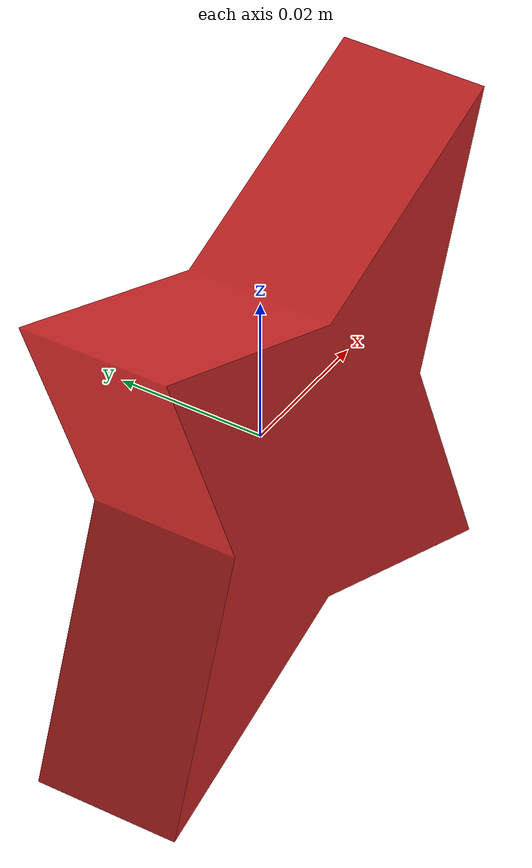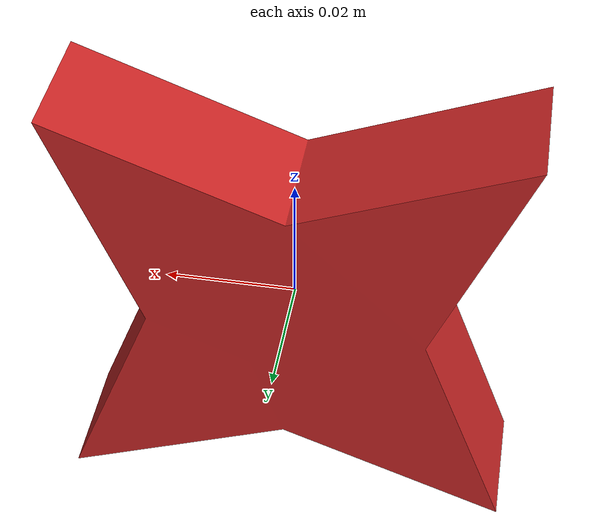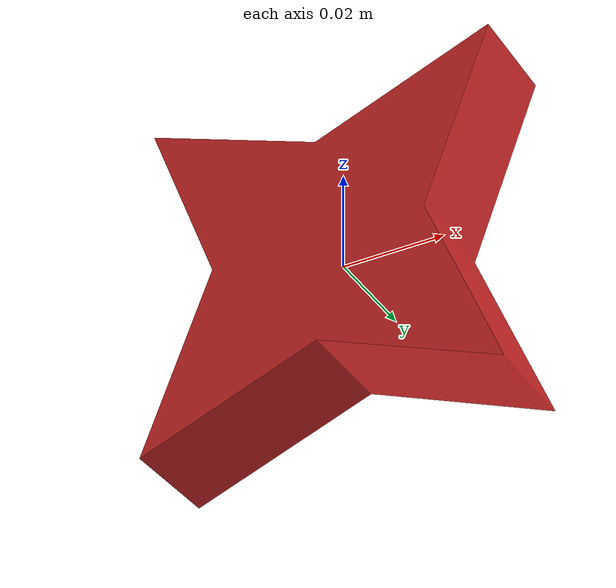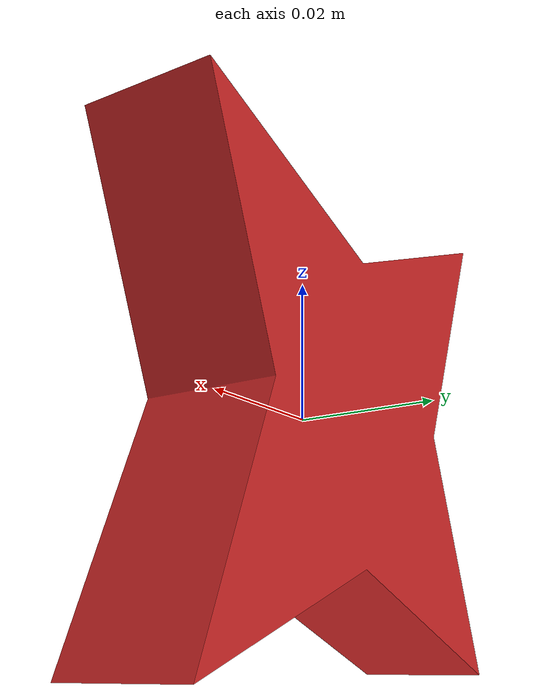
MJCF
<mujoco model="shuriken">
  <default>
    <default class="visual">
      <geom group="2" type="mesh" contype="0" conaffinity="0"/>
    </default>
    <default class="collision">
      <geom group="3" type="mesh"/>
    </default>
  </default>
  <asset>
    <texture type="2d" name="texture" file="texture.png"/>
    <material name="PlasticRed2.002" texture="texture" specular="0.0" shininess="0.0"/>
    <mesh file="shuriken.obj"/>
  </asset>
  <worldbody>
    <body name="shuriken">
      <freejoint/>
      <geom material="PlasticRed2.002" mesh="shuriken" class="visual"/>
      <geom mesh="shuriken" class="collision"/>
    </body>
  </worldbody>
</mujoco>
